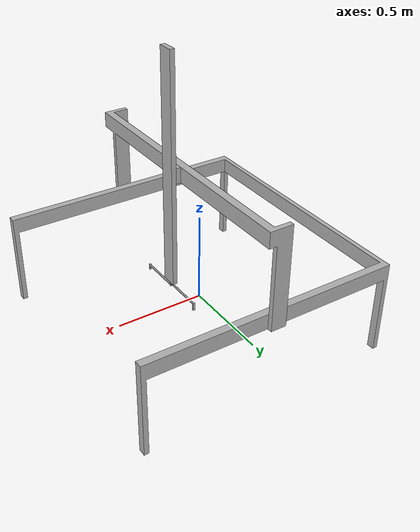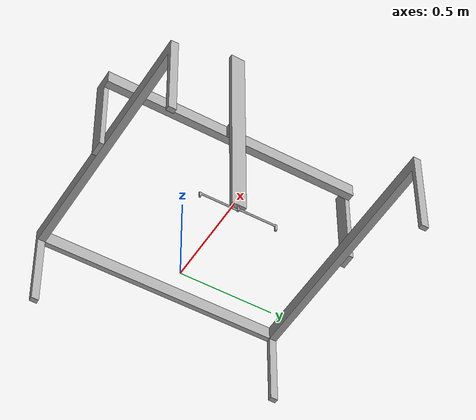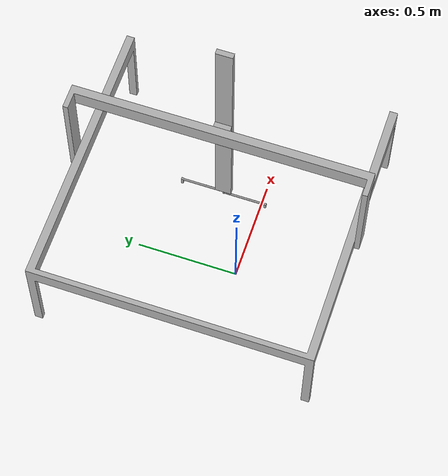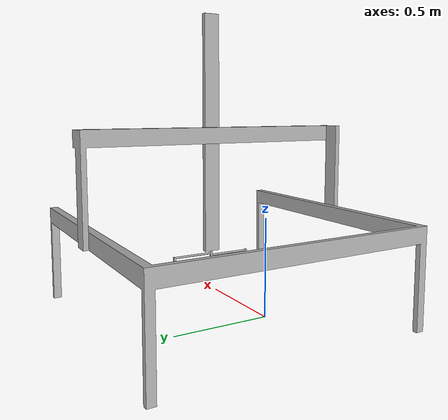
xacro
<?xml version="1.0" ?>
<robot name="robot_paletizador" xmlns:xacro="http://www.ros.org/wiki/xacro">

<xacro:include filename="$(find robot_paletizador)/urdf/materials.xacro" />
<xacro:include filename="$(find robot_paletizador)/urdf/robot_paletizador.trans" />
<xacro:include filename="$(find robot_paletizador)/urdf/robot_paletizador.gazebo" />
<link name="base_link">
  <inertial>
    <origin xyz="0.02188989577440621 0.15521032921093825 0.42749226006191954" rpy="0 0 0"/>
    <mass value="101.422"/>
    <inertia ixx="40.20949" iyy="24.204177" izz="62.49768" ixy="0.0" iyz="-0.0" ixz="0.439557"/>
  </inertial>
  <visual>
    <origin xyz="0 0 0" rpy="0 0 0"/>
    <geometry>
      <mesh filename="package://robot_paletizador/meshes/base_link.stl" scale="0.001 0.001 0.001"/>
    </geometry>
    <material name="silver"/>
  </visual>
  <collision>
    <origin xyz="0 0 0" rpy="0 0 0"/>
    <geometry>
      <mesh filename="package://robot_paletizador/meshes/base_link.stl" scale="0.001 0.001 0.001"/>
    </geometry>
  </collision>
</link>

<link name="eje_x_link_1">
  <inertial>
    <origin xyz="0.041250329210947734 0.6900003292109645 0.41125000000000295" rpy="0 0 0"/>
    <mass value="52.24960000000525"/>
    <inertia ixx="15.110557" iyy="0.984306" izz="14.23407" ixy="-0.0" iyz="-0.0" ixz="-0.148177"/>
  </inertial>
  <visual>
    <origin xyz="-0.15521 0.53479 -0.42" rpy="0 0 0"/>
    <geometry>
      <mesh filename="package://robot_paletizador/meshes/eje_x_link_1.stl" scale="0.001 0.001 0.001"/>
    </geometry>
    <material name="silver"/>
  </visual>
  <collision>
    <origin xyz="-0.15521 0.53479 -0.42" rpy="0 0 0"/>
    <geometry>
      <mesh filename="package://robot_paletizador/meshes/eje_x_link_1.stl" scale="0.001 0.001 0.001"/>
    </geometry>
  </collision>
</link>

<link name="eje_y_link_1">
  <inertial>
    <origin xyz="0.012500329210939382 3.292109410912847e-07 -3.885780586188048e-15" rpy="0 0 0"/>
    <mass value="1.255999999999999"/>
    <inertia ixx="0.00134" iyy="0.000735" izz="0.000735" ixy="0.0" iyz="0.0" ixz="0.0"/>
  </inertial>
  <visual>
    <origin xyz="-0.23521 -0.15521 -0.9" rpy="0 0 0"/>
    <geometry>
      <mesh filename="package://robot_paletizador/meshes/eje_y_link_1.stl" scale="0.001 0.001 0.001"/>
    </geometry>
    <material name="silver"/>
  </visual>
  <collision>
    <origin xyz="-0.23521 -0.15521 -0.9" rpy="0 0 0"/>
    <geometry>
      <mesh filename="package://robot_paletizador/meshes/eje_y_link_1.stl" scale="0.001 0.001 0.001"/>
    </geometry>
  </collision>
</link>

<link name="eje_z_link_1">
  <inertial>
    <origin xyz="0.012500329210939354 3.292109410635291e-07 -3.6637359812630166e-15" rpy="0 0 0"/>
    <mass value="18.839999999999982"/>
    <inertia ixx="2.270848" iyy="2.261781" izz="0.011029" ixy="0.0" iyz="0.0" ixz="0.0"/>
  </inertial>
  <visual>
    <origin xyz="-0.26021 -0.15521 -0.9" rpy="0 0 0"/>
    <geometry>
      <mesh filename="package://robot_paletizador/meshes/eje_z_link_1.stl" scale="0.001 0.001 0.001"/>
    </geometry>
    <material name="silver"/>
  </visual>
  <collision>
    <origin xyz="-0.26021 -0.15521 -0.9" rpy="0 0 0"/>
    <geometry>
      <mesh filename="package://robot_paletizador/meshes/eje_z_link_1.stl" scale="0.001 0.001 0.001"/>
    </geometry>
  </collision>
</link>

<link name="r_link_1">
  <inertial>
    <origin xyz="3.292107918495546e-07 3.2921094111904026e-07 -0.015770452998151885" rpy="0 0 0"/>
    <mass value="0.021865375582669835"/>
    <inertia ixx="2e-06" iyy="2e-06" izz="0.0" ixy="0.0" iyz="0.0" ixz="0.0"/>
  </inertial>
  <visual>
    <origin xyz="-0.27271 -0.15521 -0.3" rpy="0 0 0"/>
    <geometry>
      <mesh filename="package://robot_paletizador/meshes/r_link_1.stl" scale="0.001 0.001 0.001"/>
    </geometry>
    <material name="silver"/>
  </visual>
  <collision>
    <origin xyz="-0.27271 -0.15521 -0.3" rpy="0 0 0"/>
    <geometry>
      <mesh filename="package://robot_paletizador/meshes/r_link_1.stl" scale="0.001 0.001 0.001"/>
    </geometry>
  </collision>
</link>

<link name="griper_der_link_1">
  <inertial>
    <origin xyz="-0.2727106707890608 -0.033899488385799315 -0.3080444546290409" rpy="0 0 0"/>
    <mass value="0.15470751165339933"/>
    <inertia ixx="0.000698" iyy="1.2e-05" izz="0.000688" ixy="-0.0" iyz="3.9e-05" ixz="-0.0"/>
  </inertial>
  <visual>
    <origin xyz="-0.545421 -0.315421 -0.59" rpy="0 0 0"/>
    <geometry>
      <mesh filename="package://robot_paletizador/meshes/griper_der_link_1.stl" scale="0.001 0.001 0.001"/>
    </geometry>
    <material name="silver"/>
  </visual>
  <collision>
    <origin xyz="-0.545421 -0.315421 -0.59" rpy="0 0 0"/>
    <geometry>
      <mesh filename="package://robot_paletizador/meshes/griper_der_link_1.stl" scale="0.001 0.001 0.001"/>
    </geometry>
  </collision>
</link>

<link name="griper_izq_link_1">
  <inertial>
    <origin xyz="-0.27271067078906075 -0.27204842033391 -0.29660359519475155" rpy="0 0 0"/>
    <mass value="0.14685751165339933"/>
    <inertia ixx="0.000634" iyy="5e-06" izz="0.00063" ixy="-0.0" iyz="-2.1e-05" ixz="0.0"/>
  </inertial>
  <visual>
    <origin xyz="-0.545421 -0.305421 -0.57" rpy="0 0 0"/>
    <geometry>
      <mesh filename="package://robot_paletizador/meshes/griper_izq_link_1.stl" scale="0.001 0.001 0.001"/>
    </geometry>
    <material name="silver"/>
  </visual>
  <collision>
    <origin xyz="-0.545421 -0.305421 -0.57" rpy="0 0 0"/>
    <geometry>
      <mesh filename="package://robot_paletizador/meshes/griper_izq_link_1.stl" scale="0.001 0.001 0.001"/>
    </geometry>
  </collision>
</link>

<joint name="x_joint" type="prismatic">
  <origin xyz="0.15521 -0.53479 0.42" rpy="0 0 0"/>
  <parent link="base_link"/>
  <child link="eje_x_link_1"/>
  <axis xyz="1.0 0.0 0.0"/>
  <limit upper="0.65" lower="-0.65" effort="100" velocity="100"/>
</joint>

<joint name="y_joint" type="prismatic">
  <origin xyz="0.08 0.69 0.48" rpy="0 0 0"/>
  <parent link="eje_x_link_1"/>
  <child link="eje_y_link_1"/>
  <axis xyz="-0.0 -1.0 0.0"/>
  <limit upper="0.65" lower="-0.65" effort="100" velocity="100"/>
</joint>

<joint name="z_joint" type="prismatic">
  <origin xyz="0.025 0.0 0.0" rpy="0 0 0"/>
  <parent link="eje_y_link_1"/>
  <child link="eje_z_link_1"/>
  <axis xyz="0.0 -0.0 1.0"/>
  <limit upper="0.4" lower="-0.2" effort="100" velocity="100"/>
</joint>

<joint name="r_joint" type="revolute">
  <origin xyz="0.0125 0.0 -0.6" rpy="0 0 0"/>
  <parent link="eje_z_link_1"/>
  <child link="r_link_1"/>
  <axis xyz="-0.0 0.0 -1.0"/>
  <limit upper="3.141593" lower="-3.141593" effort="100" velocity="100"/>
</joint>

<joint name="griper_der_joint" type="prismatic">
  <origin xyz="0.272711 0.160211 0.29" rpy="0 0 0"/>
  <parent link="r_link_1"/>
  <child link="griper_der_link_1"/>
  <axis xyz="0.0 1.0 0.0"/>
  <limit upper="0.0" lower="-0.1" effort="100" velocity="100"/>
</joint>

<joint name="griper_izq_joint" type="prismatic">
  <origin xyz="0.272711 0.150211 0.27" rpy="0 0 0"/>
  <parent link="r_link_1"/>
  <child link="griper_izq_link_1"/>
  <axis xyz="-0.0 -1.0 -0.0"/>
  <limit upper="0.0" lower="-0.1" effort="100" velocity="100"/>
</joint>

</robot>

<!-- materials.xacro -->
<robot name="robot_paletizador" xmlns:xacro="http://www.ros.org/wiki/xacro" >

<material name="silver">
  <color rgba="0.700 0.700 0.700 1.000"/>
</material>

</robot>

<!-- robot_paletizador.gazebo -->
<robot name="robot_paletizador" xmlns:xacro="http://www.ros.org/wiki/xacro" >

<xacro:property name="body_color" value="Gazebo/Silver" />

<gazebo>
  <plugin name="control" filename="libgazebo_ros_control.so"/>
</gazebo>
<gazebo reference="base_link">
  <material>${body_color}</material>
  <mu1>0.2</mu1>
  <mu2>0.2</mu2>
  <selfCollide>true</selfCollide>
  <gravity>true</gravity>
</gazebo>

<gazebo reference="eje_x_link_1">
  <material>${body_color}</material>
  <mu1>0.2</mu1>
  <mu2>0.2</mu2>
  <selfCollide>true</selfCollide>
</gazebo>

<gazebo reference="eje_y_link_1">
  <material>${body_color}</material>
  <mu1>0.2</mu1>
  <mu2>0.2</mu2>
  <selfCollide>true</selfCollide>
</gazebo>

<gazebo reference="eje_z_link_1">
  <material>${body_color}</material>
  <mu1>0.2</mu1>
  <mu2>0.2</mu2>
  <selfCollide>true</selfCollide>
</gazebo>

<gazebo reference="r_link_1">
  <material>${body_color}</material>
  <mu1>0.2</mu1>
  <mu2>0.2</mu2>
  <selfCollide>true</selfCollide>
</gazebo>

<gazebo reference="griper_der_link_1">
  <material>${body_color}</material>
  <mu1>0.2</mu1>
  <mu2>0.2</mu2>
  <selfCollide>true</selfCollide>
</gazebo>

<gazebo reference="griper_izq_link_1">
  <material>${body_color}</material>
  <mu1>0.2</mu1>
  <mu2>0.2</mu2>
  <selfCollide>true</selfCollide>
</gazebo>

</robot>
